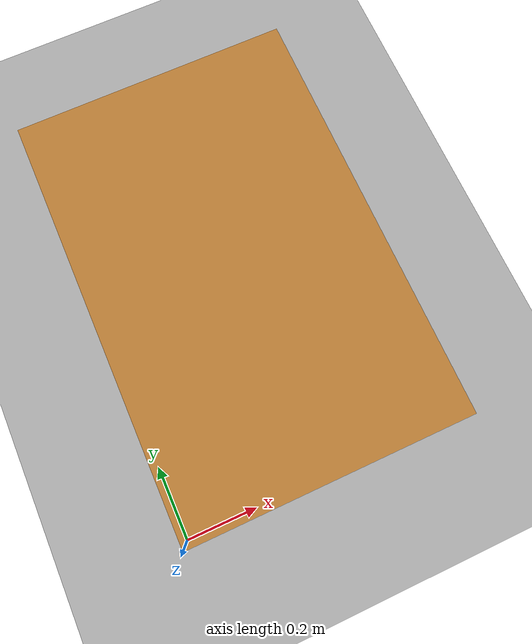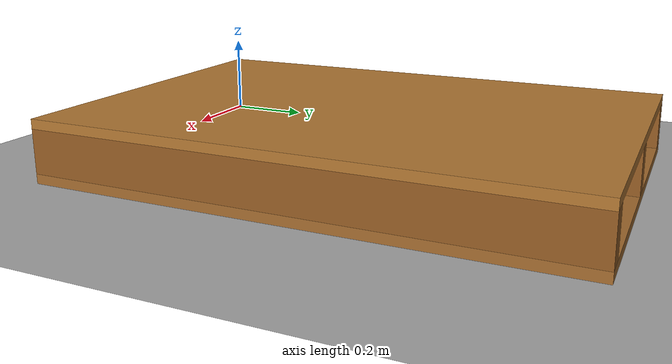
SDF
<?xml version="1.0" ?>
<sdf version="1.10">
  <world name="pallet_towers">
    <gravity>0 0 -9.81</gravity>

    <physics name="pallet_physics" type="ignored">
      <max_step_size>0.01</max_step_size>
      <real_time_factor>1.0</real_time_factor>
      <real_time_update_rate>100</real_time_update_rate>
      <max_contacts>15</max_contacts>
    </physics>

    <plugin filename="gz-sim-physics-system" name="gz::sim::systems::Physics" />
    <plugin filename="gz-sim-user-commands-system" name="gz::sim::systems::UserCommands" />
    <plugin filename="gz-sim-scene-broadcaster-system" name="gz::sim::systems::SceneBroadcaster" />

    <light type="directional" name="sun">
      <cast_shadows>true</cast_shadows>
      <pose>0 0 10 0 0 0</pose>
      <diffuse>0.8 0.8 0.8 1</diffuse>
      <specular>0.2 0.2 0.2 1</specular>
      <direction>-0.5 0.2 -0.9</direction>
    </light>

    <model name="ground_plane">
      <static>true</static>
      <link name="link">
        <collision name="collision">
          <geometry>
            <plane>
              <normal>0 0 1</normal>
              <size>30 30</size>
            </plane>
          </geometry>

          <surface>
            <friction>
              <ode>
                <mu>0.55</mu>
                <mu2>0.55</mu2>
              </ode>
            </friction>
            <bounce>
              <restitution_coefficient>0</restitution_coefficient>
              <threshold>100000</threshold>
            </bounce>
            <contact>
              <ode>
                <kp>1000000</kp>
                <kd>100</kd>
                <max_vel>1</max_vel>
                <min_depth>0.0005</min_depth>
              </ode>
            </contact>
          </surface>
        </collision>

        <visual name="visual">
          <geometry>
            <plane>
              <normal>0 0 1</normal>
              <size>30 30</size>
            </plane>
          </geometry>
          <material>
            <ambient>0.65 0.65 0.65 1</ambient>
            <diffuse>0.65 0.65 0.65 1</diffuse>
          </material>
        </visual>
      </link>
    </model>

    <model name="pallet_01_P01">
          <static>false</static>
          <pose>0.4 0.6 0.002 0 0 0</pose>
          <self_collide>false</self_collide>
          <allow_auto_disable>false</allow_auto_disable>
          <link name="body">
                <gravity>true</gravity>
                <kinematic>false</kinematic>
                <inertial>
                      <pose>0 0 0.072 0 0 0</pose>
                      <mass>25</mass>
                      <inertia>
                            <ixx>3.07216082</ixx>
                            <ixy>0</ixy>
                            <ixz>0</ixz>
                            <iyy>1.70896776</iyy>
                            <iyz>0</iyz>
                            <izz>4.63680694</izz>
                      </inertia>
                </inertial>
                <collision name="bottom_deck_collision">
                      <pose>0 0 0.011 0 0 0</pose>
                      <geometry>
                            <box>
                                  <size>0.8 1.2 0.022</size>
                            </box>
                      </geometry>
                      <surface>
                            <friction>
                                  <ode>
                                        <mu>0.55</mu>
                                        <mu2>0.55</mu2>
                                  </ode>
                            </friction>
                            <bounce>
                                  <restitution_coefficient>0</restitution_coefficient>
                                  <threshold>100000</threshold>
                            </bounce>
                            <contact>
                                  <ode>
                                        <kp>1000000</kp>
                                        <kd>100</kd>
                                        <max_vel>1</max_vel>
                                        <min_depth>0.0005</min_depth>
                                  </ode>
                            </contact>
                      </surface>
                </collision>
                <visual name="bottom_deck_visual">
                      <pose>0 0 0.011 0 0 0</pose>
                      <geometry>
                            <box>
                                  <size>0.8 1.2 0.022</size>
                            </box>
                      </geometry>
                      <material>
                            <ambient>0.46 0.28 0.10 1</ambient>
                            <diffuse>0.64 0.42 0.18 1</diffuse>
                            <specular>0.03 0.03 0.03 1</specular>
                      </material>
                </visual>
                <collision name="left_stringer_collision">
                      <pose>-0.375 0 0.072 0 0 0</pose>
                      <geometry>
                            <box>
                                  <size>0.05 1.2 0.1</size>
                            </box>
                      </geometry>
                      <surface>
                            <friction>
                                  <ode>
                                        <mu>0.55</mu>
                                        <mu2>0.55</mu2>
                                  </ode>
                            </friction>
                            <bounce>
                                  <restitution_coefficient>0</restitution_coefficient>
                                  <threshold>100000</threshold>
                            </bounce>
                            <contact>
                                  <ode>
                                        <kp>1000000</kp>
                                        <kd>100</kd>
                                        <max_vel>1</max_vel>
                                        <min_depth>0.0005</min_depth>
                                  </ode>
                            </contact>
                      </surface>
                </collision>
                <visual name="left_stringer_visual">
                      <pose>-0.375 0 0.072 0 0 0</pose>
                      <geometry>
                            <box>
                                  <size>0.05 1.2 0.1</size>
                            </box>
                      </geometry>
                      <material>
                            <ambient>0.42 0.25 0.09 1</ambient>
                            <diffuse>0.58 0.36 0.14 1</diffuse>
                            <specular>0.03 0.03 0.03 1</specular>
                      </material>
                </visual>
                <collision name="centre_stringer_collision">
                      <pose>0 0 0.072 0 0 0</pose>
                      <geometry>
                            <box>
                                  <size>0.05 1.2 0.1</size>
                            </box>
                      </geometry>
                      <surface>
                            <friction>
                                  <ode>
                                        <mu>0.55</mu>
                                        <mu2>0.55</mu2>
                                  </ode>
                            </friction>
                            <bounce>
                                  <restitution_coefficient>0</restitution_coefficient>
                                  <threshold>100000</threshold>
                            </bounce>
                            <contact>
                                  <ode>
                                        <kp>1000000</kp>
                                        <kd>100</kd>
                                        <max_vel>1</max_vel>
                                        <min_depth>0.0005</min_depth>
                                  </ode>
                            </contact>
                      </surface>
                </collision>
                <visual name="centre_stringer_visual">
                      <pose>0 0 0.072 0 0 0</pose>
                      <geometry>
                            <box>
                                  <size>0.05 1.2 0.1</size>
                            </box>
                      </geometry>
                      <material>
                            <ambient>0.42 0.25 0.09 1</ambient>
                            <diffuse>0.58 0.36 0.14 1</diffuse>
                            <specular>0.03 0.03 0.03 1</specular>
                      </material>
                </visual>
                <collision name="right_stringer_collision">
                      <pose>0.375 0 0.072 0 0 0</pose>
                      <geometry>
                            <box>
                                  <size>0.05 1.2 0.1</size>
                            </box>
                      </geometry>
                      <surface>
                            <friction>
                                  <ode>
                                        <mu>0.55</mu>
                                        <mu2>0.55</mu2>
                                  </ode>
                            </friction>
                            <bounce>
                                  <restitution_coefficient>0</restitution_coefficient>
                                  <threshold>100000</threshold>
                            </bounce>
                            <contact>
                                  <ode>
                                        <kp>1000000</kp>
                                        <kd>100</kd>
                                        <max_vel>1</max_vel>
                                        <min_depth>0.0005</min_depth>
                                  </ode>
                            </contact>
                      </surface>
                </collision>
                <visual name="right_stringer_visual">
                      <pose>0.375 0 0.072 0 0 0</pose>
                      <geometry>
                            <box>
                                  <size>0.05 1.2 0.1</size>
                            </box>
                      </geometry>
                      <material>
                            <ambient>0.42 0.25 0.09 1</ambient>
                            <diffuse>0.58 0.36 0.14 1</diffuse>
                            <specular>0.03 0.03 0.03 1</specular>
                      </material>
                </visual>
                <collision name="top_deck_collision">
                      <pose>0 0 0.133 0 0 0</pose>
                      <geometry>
                            <box>
                                  <size>0.8 1.2 0.022</size>
                            </box>
                      </geometry>
                      <surface>
                            <friction>
                                  <ode>
                                        <mu>0.55</mu>
                                        <mu2>0.55</mu2>
                                  </ode>
                            </friction>
                            <bounce>
                                  <restitution_coefficient>0</restitution_coefficient>
                                  <threshold>100000</threshold>
                            </bounce>
                            <contact>
                                  <ode>
                                        <kp>1000000</kp>
                                        <kd>100</kd>
                                        <max_vel>1</max_vel>
                                        <min_depth>0.0005</min_depth>
                                  </ode>
                            </contact>
                      </surface>
                </collision>
                <visual name="top_deck_visual">
                      <pose>0 0 0.133 0 0 0</pose>
                      <geometry>
                            <box>
                                  <size>0.8 1.2 0.022</size>
                            </box>
                      </geometry>
                      <material>
                            <ambient>0.50 0.31 0.11 1</ambient>
                            <diffuse>0.70 0.47 0.20 1</diffuse>
                            <specular>0.03 0.03 0.03 1</specular>
                      </material>
                </visual>
          </link>
    </model>

  </world>
</sdf>
